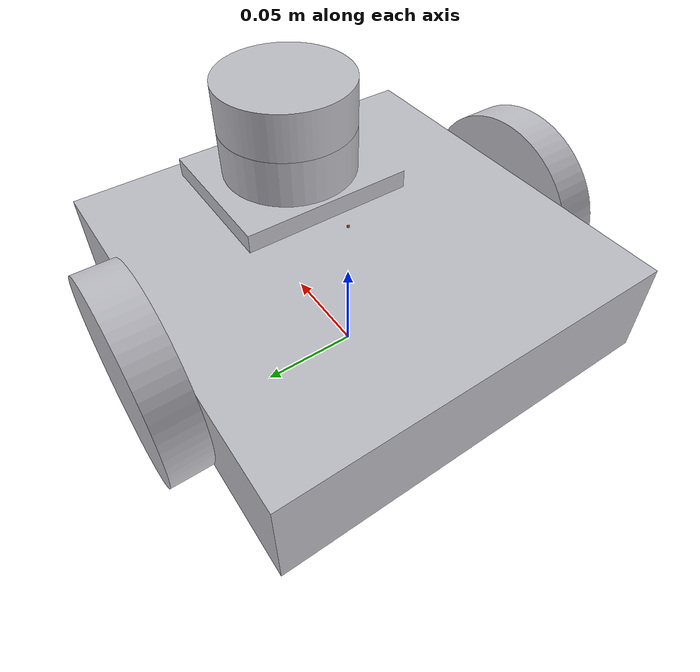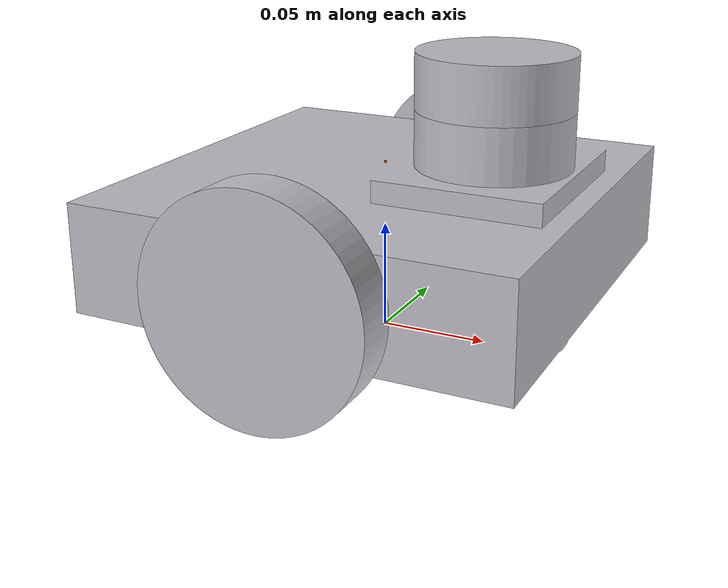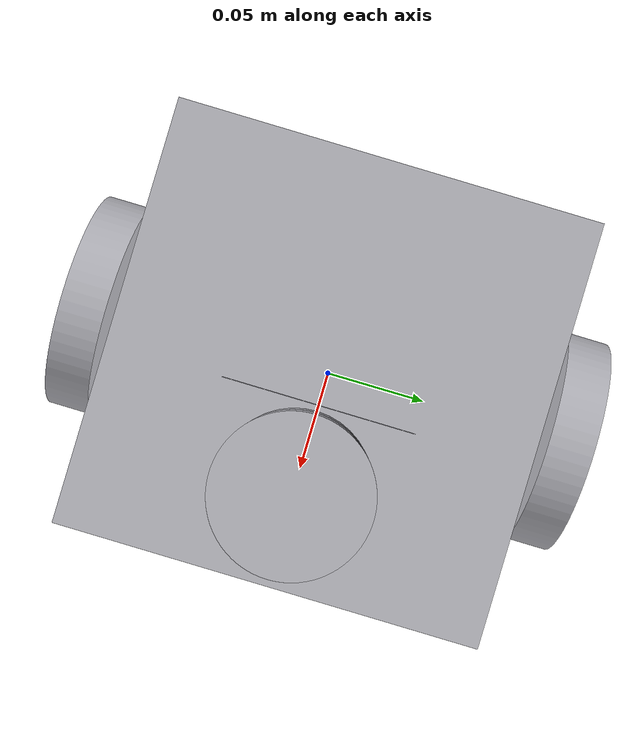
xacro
<?xml version="1.0" ?>
<robot name="my_robot" xmlns:xacro="http://www.ros.org/wiki/xacro">

<xacro:include filename="$(find my_robot_description)/urdf/materials.xacro" />
<xacro:include filename="$(find my_robot_description)/urdf/my_robot.trans" />
<xacro:include filename="$(find my_robot_description)/urdf/my_robot.gazebo" />

<link name="base_link">
  <inertial>
    <origin xyz="0.003947432081749706 0.0 0.052804115668456025" rpy="0 0 0"/>
    <mass value="2.3079643337726483"/>
    <inertia ixx="0.00789" iyy="0.00841" izz="0.014813" ixy="-0.0" iyz="0.0" ixz="-0.000341"/>
  </inertial>
  <visual>
    <origin xyz="0 0 0" rpy="0 0 0"/>
    <geometry>
      <mesh filename="file://$(find my_robot_description)/meshes/base_link.stl" scale="0.001 0.001 0.001"/>
    </geometry>
    <material name="silver"/>
  </visual>
  <collision>
    <origin xyz="0 0 0" rpy="0 0 0"/>
    <geometry>
      <mesh filename="file://$(find my_robot_description)/meshes/base_link.stl" scale="0.001 0.001 0.001"/>
    </geometry>
  </collision>
</link>

<link name="right_wheel_link_1">
  <inertial>
    <origin xyz="-7.237528875152536e-18 -0.009999999999999995 -1.3877787807814457e-17" rpy="0 0 0"/>
    <mass value="0.14608405839192537"/>
    <inertia ixx="9.6e-05" iyy="0.000183" izz="9.6e-05" ixy="0.0" iyz="0.0" ixz="-0.0"/>
  </inertial>
  <visual>
    <origin xyz="-0.0 0.1 -0.05" rpy="0 0 0"/>
    <geometry>
      <mesh filename="file://$(find my_robot_description)/meshes/right_wheel_link_1.stl" scale="0.001 0.001 0.001"/>
    </geometry>
    <material name="silver"/>
  </visual>
  <collision>
    <origin xyz="-0.0 0.1 -0.05" rpy="0 0 0"/>
    <geometry>
      <mesh filename="file://$(find my_robot_description)/meshes/right_wheel_link_1.stl" scale="0.001 0.001 0.001"/>
    </geometry>
  </collision>
</link>

<link name="left_wheel_link_1">
  <inertial>
    <origin xyz="-7.237528875152536e-18 0.009999999999999995 -1.3877787807814457e-17" rpy="0 0 0"/>
    <mass value="0.14608405839192537"/>
    <inertia ixx="9.6e-05" iyy="0.000183" izz="9.6e-05" ixy="-0.0" iyz="-0.0" ixz="-0.0"/>
  </inertial>
  <visual>
    <origin xyz="-0.0 -0.1 -0.05" rpy="0 0 0"/>
    <geometry>
      <mesh filename="file://$(find my_robot_description)/meshes/left_wheel_link_1.stl" scale="0.001 0.001 0.001"/>
    </geometry>
    <material name="silver"/>
  </visual>
  <collision>
    <origin xyz="-0.0 -0.1 -0.05" rpy="0 0 0"/>
    <geometry>
      <mesh filename="file://$(find my_robot_description)/meshes/left_wheel_link_1.stl" scale="0.001 0.001 0.001"/>
    </geometry>
  </collision>
</link>

<link name="lidar_link_1">
  <inertial>
    <origin xyz="0.0 -1.772456051057764e-17 0.012499999999999997" rpy="0 0 0"/>
    <mass value="0.7552585088770711"/>
    <inertia ixx="0.000271" iyy="0.000271" izz="0.000463" ixy="-0.0" iyz="0.0" ixz="0.0"/>
  </inertial>
  <visual>
    <origin xyz="-0.0525 0.0 -0.11" rpy="0 0 0"/>
    <geometry>
      <mesh filename="file://$(find my_robot_description)/meshes/lidar_link_1.stl" scale="0.001 0.001 0.001"/>
    </geometry>
    <material name="silver"/>
  </visual>
  <collision>
    <origin xyz="-0.0525 0.0 -0.11" rpy="0 0 0"/>
    <geometry>
      <mesh filename="file://$(find my_robot_description)/meshes/lidar_link_1.stl" scale="0.001 0.001 0.001"/>
    </geometry>
  </collision>
</link>

<link name ="base_footprint"/>

<joint name = "base_joint" type = "fixed">
  <parent link = "base_footprint"/>
  <child link = "base_link"/>
  <origin xyz = "0.0 0.0 0.0" rpy="0 0 0"/>
  </joint>

<!-- imu -->
<link name='imu_link'>
  <pose>0 0 0 0 0 0</pose>
  <inertial>
      <mass value="0.01"/>
      <origin xyz="0.0 0 0" rpy="0 0 0"/>
      <inertia
          ixx="1e-7" ixy="0" ixz="0"
          iyy="1e-7" iyz="0"
          izz="1e-7"
      />
  </inertial>
  <visual name='imu_visual'>
      <origin xyz="0 0 0" rpy="0 0 0"/>
      <geometry>
          <box size="0.001 0.001 0.001"/>
      </geometry>
      <material name='imu_material'>
          <ambient>0.1 0.1 0.1 1</ambient>
          <diffuse>0.1 0.1 0.2 1</diffuse>
          <specular>0 0 0 0</specular>
          <emissive>0 0 0 1</emissive>
      </material>
  </visual>
  <collision name='imu_collision'>
      <origin xyz="0 0 0" rpy="0 0 0"/>
      <geometry>
          <box size="0.001 0.001 0.001"/>
      </geometry>
  </collision>
</link>

<joint type="fixed" name="imu_joint">
  <child link="imu_link"/>
  <parent link="base_link"/>
  <origin xyz="0.0 0.0 0.08" rpy="0 0 0"/>
</joint>

<joint name="Rev1" type="continuous">
  <origin xyz="0.0 -0.1 0.05" rpy="0 0 0"/>
  <parent link="base_link"/>
  <child link="right_wheel_link_1"/>
  <axis xyz="0.0 1.0 0.0"/>
</joint>

<joint name="Rev2" type="continuous">
  <origin xyz="0.0 0.1 0.05" rpy="0 0 0"/>
  <parent link="base_link"/>
  <child link="left_wheel_link_1"/>
  <axis xyz="0.0 1.0 0.0"/>
</joint>

<joint name="Rigid3" type="fixed">
  <origin xyz="0.0525 0.0 0.11" rpy="0 0 0"/>
  <parent link="base_link"/>
  <child link="lidar_link_1"/>
</joint>

</robot>

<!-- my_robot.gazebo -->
<robot name="my_robot" xmlns:xacro="http://www.ros.org/wiki/xacro" >

<xacro:property name="body_color" value="Gazebo/Silver" />

<gazebo>
  <plugin name="control" filename="libgazebo_ros_control.so"/>
</gazebo>
<gazebo reference="base_link">
  <material>${body_color}</material>
  <mu1>0.1</mu1>
  <mu2>0.1</mu2>
  <self_collide>true</self_collide>
  <gravity>true</gravity>
</gazebo>

<gazebo reference="right_wheel_link_1">
  <material>${body_color}</material>
  <mu1>1500</mu1>
  <mu2>1500</mu2>
  <self_collide>true</self_collide>
</gazebo>

<gazebo reference="left_wheel_link_1">
  <material>${body_color}</material>
  <mu1>1500</mu1>
  <mu2>1500</mu2>
  <self_collide>true</self_collide>
</gazebo>

<gazebo reference="lidar_link_1">
  <material>${body_color}</material>
  <mu1>0.2</mu1>
  <mu2>0.2</mu2>
  <self_collide>true</self_collide>
</gazebo>

<!-- imu link -->
<gazebo reference="imu_link">
  <gravity>true</gravity>
  <sensor name="twr_imu" type="imu">
      <always_on>true</always_on>
      <update_rate>100</update_rate>
      <visualize>true</visualize>
      <imu>
          <orientation>
              <x>
                  <noise type="gaussian">
                      <mean>0.0</mean>
                      <stddev>2e-3</stddev>
                  </noise>
              </x>
              <y>
                  <noise type="gaussian">
                      <mean>0.0</mean>
                      <stddev>2e-3</stddev>
                  </noise>
              </y>
              <z>
                  <noise type="gaussian">
                      <mean>0.0</mean>
                      <stddev>2e-3</stddev>
                  </noise>
              </z>
          </orientation>
          <angular_velocity>
              <x>
                  <noise type="gaussian">
                      <mean>0.0</mean>
                      <stddev>2e-4</stddev>
                  </noise>
              </x>
              <y>
                  <noise type="gaussian">
                      <mean>0.0</mean>
                      <stddev>2e-4</stddev>
                  </noise>
              </y>
              <z>
                  <noise type="gaussian">
                      <mean>0.0</mean>
                      <stddev>2e-4</stddev>
                  </noise>
              </z>
          </angular_velocity>
          <linear_acceleration>
              <x>
                  <noise type="gaussian">
                      <mean>0.0</mean>
                      <stddev>1.7e-2</stddev>
                  </noise>
              </x>
              <y>
                  <noise type="gaussian">
                      <mean>0.0</mean>
                      <stddev>1.7e-2</stddev>
                  </noise>
              </y>
              <z>
                  <noise type="gaussian">
                      <mean>0.0</mean>
                      <stddev>1.7e-2</stddev>
                  </noise>
              </z>
          </linear_acceleration>
      </imu>
      <plugin name="two_wheeled_robot_imu" filename="libgazebo_ros_imu_sensor.so">
          <ros>
            <namespace></namespace>
            <remapping>~/out:=imu</remapping>
          </ros>
          <initial_orientation_as_reference>false</initial_orientation_as_reference>
          <frame_name>imu_link</frame_name>
      </plugin>
  </sensor>
</gazebo>

<!-- differential drive controller plugin -->
<gazebo>
  <plugin name="four_diff_controller" filename="libgazebo_ros_diff_drive.so">

      <ros>
          <namespace></namespace>
      </ros>

      <update_rate>50</update_rate>
      <num_wheel_pairs>1</num_wheel_pairs>
      <left_joint>Rev2</left_joint>
      <right_joint>Rev1</right_joint>
      <wheel_separation>0.172</wheel_separation>
      <wheel_diameter>0.1</wheel_diameter>
      <max_wheel_torque>20</max_wheel_torque>
      <max_wheel_acceleration>1.0</max_wheel_acceleration>
      <command_topic>cmd_vel</command_topic>
      <publish_odom>true</publish_odom>
      <publish_odom_tf>true</publish_odom_tf>
      <publish_wheel_tf>false</publish_wheel_tf>
      <odometry_topic>odom</odometry_topic>
      <odometry_frame>odom</odometry_frame>
      <robot_base_frame>base_footprint</robot_base_frame>
      <odometry_source>1</odometry_source>
      <ros>
      </ros>
  </plugin>
</gazebo>

<!-- lidar controller plugin -->
<gazebo reference="lidar_link_1">
  <sensor name="lidar" type="ray">
    <always_on>true</always_on>
    <visualize>true</visualize>
    <update_rate>5</update_rate>
    <ray>
      <scan>
        <horizontal>
          <samples>360</samples>
          <resolution>1.000000</resolution>
          <min_angle>0.000000</min_angle>
          <max_angle>6.280000</max_angle>
        </horizontal>
      </scan>
      <range>
        <min>0.120000</min>
        <max>3.5</max>
        <resolution>0.015000</resolution>
      </range>
      <noise>
        <type>gaussian</type>
        <mean>0.0</mean>
        <stddev>0.01</stddev>
      </noise>
    </ray>
    <plugin name="scan" filename="libgazebo_ros_ray_sensor.so">
      <ros>
        <remapping>~/out:=scan</remapping>
      </ros>
      <output_type>sensor_msgs/LaserScan</output_type>
      <frame_name>lidar_link_1</frame_name>
    </plugin>
  </sensor>
</gazebo>

</robot>
